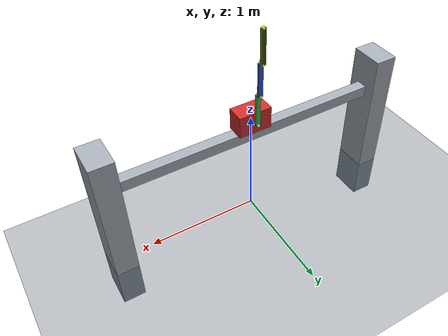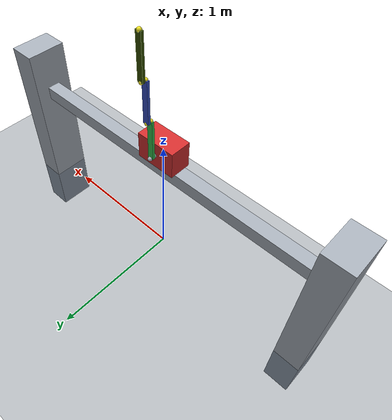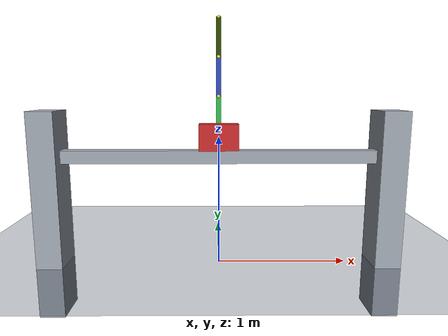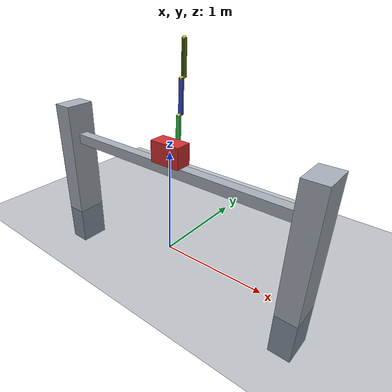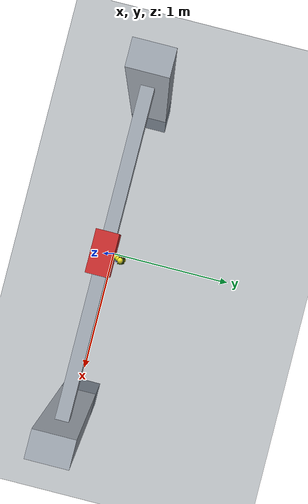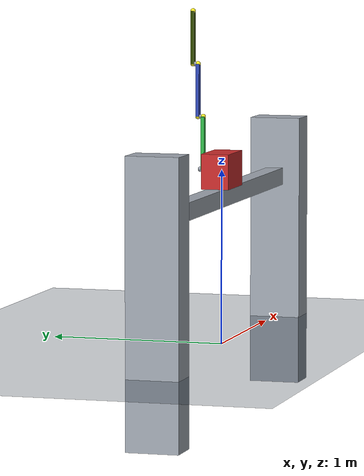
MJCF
<mujoco model="cartpole_triple">
  <compiler angle="radian" autolimits="true" />

  <option timestep="0.005" gravity="0 0 -9.81" integrator="RK4" />

  <default>
    <geom contype="0" conaffinity="0" />
  </default>

  <visual>
    <headlight diffuse="0.7 0.7 0.7" ambient="0.3 0.3 0.3" specular="0.1 0.1 0.1" />
    <rgba haze="0.15 0.2 0.25 1" />
  </visual>

  <asset>
    <material name="floor_mat" rgba="0.16 0.22 0.28 1" />
    <material name="metal_mat" rgba="0.65 0.68 0.72 1" />
    <material name="cart_mat" rgba="0.82 0.18 0.18 1" />
    <material name="pole1_mat" rgba="0.2 0.75 0.3 1" />
    <material name="pole2_mat" rgba="0.2 0.3 0.75 1" />
    <material name="pole3_mat" rgba="0.2 0.3 0 1" />
    <material name="site_mat" rgba="0.95 0.9 0.15 0.9" />
  </asset>

  <worldbody>
    <light diffuse="0.7 0.7 0.7" pos="0 0 3.5" dir="0 0 -1" />
    <camera name="main" pos="0 3.0 1.3" xyaxes="1 0 0 0 0 1" fovy="45" />
    <geom name="floor" type="plane" size="5 5 0.1" material="floor_mat" />
    <body name="frame">
      <geom name="tower_left" type="box" pos="-1.3 0 0.4" size="0.1 0.15 0.8" material="metal_mat" />
      <geom name="tower_right" type="box" pos="1.3 0 0.4" size="0.1 0.15 0.8" material="metal_mat" />
      <geom name="rail" type="box" pos="0 0 0.85" size="1.3 0.05 0.05" material="metal_mat" />
    </body>
    <body name="cart" pos="0 0 1">
      <joint name="cart_slide" type="slide" axis="1 0 0" range="-1 1" frictionloss="0.1" />

      <geom name="cart_geom" type="box" size="0.15 0.08 0.1" mass="2.0" material="cart_mat" />
      <site name="cart_center_site" pos="0 0 0" size="0.02" type="sphere" material="site_mat" />
      <geom name="mount_pin" type="capsule" pos="0 0.095 0" axisangle="1 0 0 1.5708"
        size="0.015 0.03"
        material="metal_mat" />

      <body name="pole1" pos="0 0.11 0">
        <joint name="pole1_hinge" type="hinge" axis="0 1 0" range="-3.14159 3.14159"
          frictionloss="0.03" />
        <site name="pole1_hinge_site" pos="0 0 0" size="0.015" type="sphere" material="site_mat" />
        <geom name="pole1_geom" type="box" pos="0 0 0.15" size="0.02 0.01 0.15" mass="0.5"
          material="pole1_mat" />
        <site name="pole1_tip_site" pos="0 0 0.3" size="0.015" type="sphere" material="site_mat" />
        <geom name="pole2_mount_pin" type="capsule" pos="0 0.015 0.3" axisangle="1 0 0 1.5708"
          size="0.012 0.015"
          material="metal_mat" />

        <body name="pole2" pos="0 0.03 0.3">
          <joint name="pole2_hinge" type="hinge" axis="0 1 0" range="-3.14159 3.14159"
            frictionloss="0.03" />
          <site name="pole2_hinge_site" pos="0 0 0" size="0.015" type="sphere" material="site_mat" />
          <geom name="pole2_geom" type="box" pos="0 0 0.15" size="0.02 0.01 0.15" mass="0.5"
            material="pole2_mat" />
          <site name="pole2_tip_site" pos="0 0 0.3" size="0.015" type="sphere" material="site_mat" />

          <geom name="pole3_mount_pin" type="capsule" pos="0 0.015 0.3" axisangle="1 0 0 1.5708"
            size="0.012 0.015"
            material="metal_mat" />
          <body name="pole3" pos="0 0.03 0.3">
            <joint name="pole3_hinge" type="hinge" axis="0 1 0" range="-3.14159 3.14159"
              frictionloss="0.03" />
            <site name="pole3_hinge_site" pos="0 0 0" size="0.015" type="sphere" material="site_mat" />
            <geom name="pole3_geom" type="box" pos="0 0 0.15" size="0.02 0.01 0.15" mass="0.5"
              material="pole3_mat" />
            <site name="pole3_tip_site" pos="0 0 0.3" size="0.015" type="sphere" material="site_mat" />

          </body>

        </body>
      </body>
    </body>
  </worldbody>

  <actuator>
    <position
      name="cart_pos_actuator"
      joint="cart_slide"
      kp="2800"
      kv="1400"
      ctrlrange="-1 1"
    />
  </actuator>
</mujoco>
